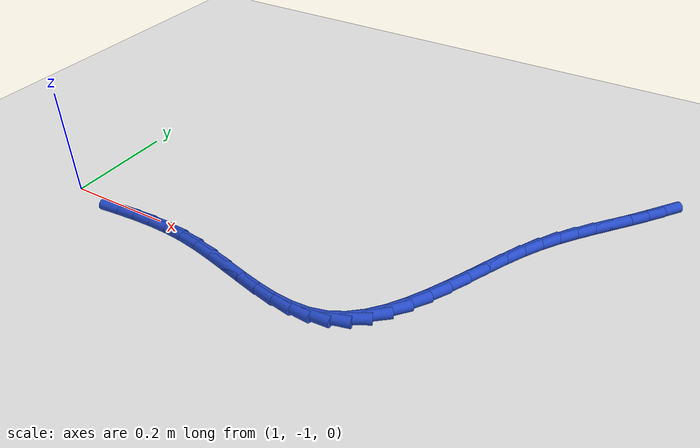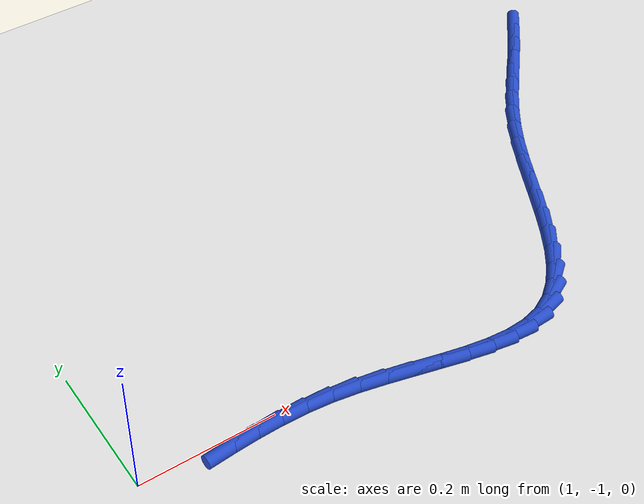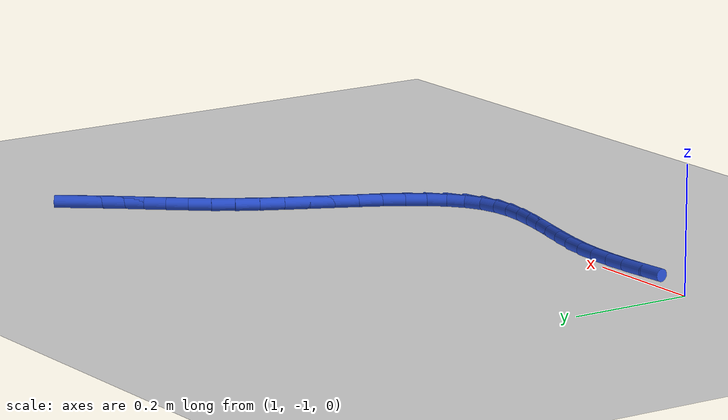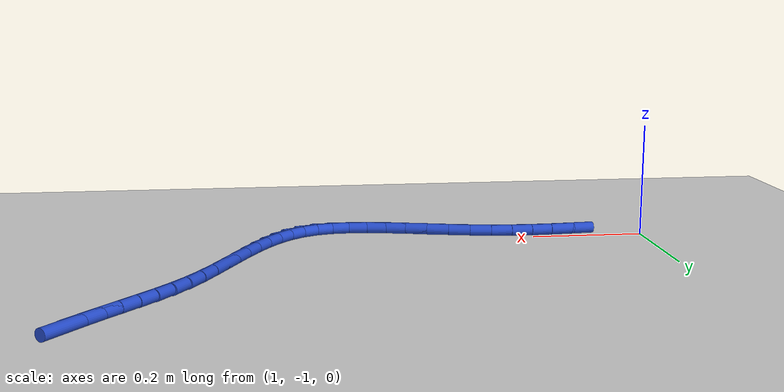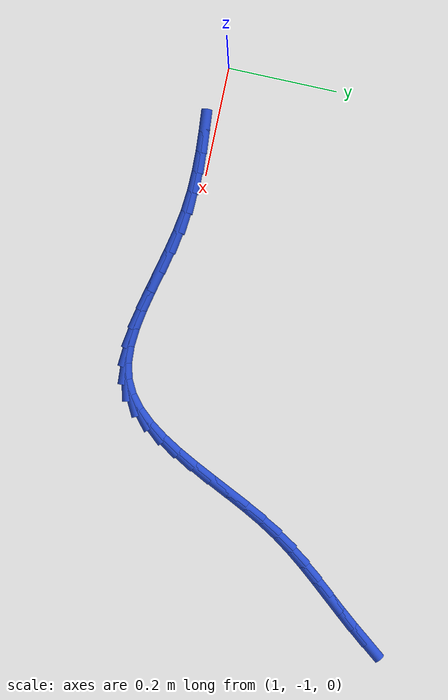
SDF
<sdf version="1.6">
 <world name="default">
  <model name="ground_plane">
   <static>1</static>
   <link name="link">
    <collision name="collision">
     <geometry><plane><normal>0 0 1</normal><size>100 100</size></plane></geometry>
     <surface><friction><ode><mu>100</mu><mu2>50</mu2></ode></friction></surface>
    </collision>
    <visual name="visual">
     <cast_shadows>0</cast_shadows>
     <geometry><plane><normal>0 0 1</normal><size>100 100</size></plane></geometry>
     <material>
      <script><uri>file://media/materials/scripts/gazebo.material</uri><name>Gazebo/WhiteGlow</name></script>
     </material>
    </visual>
   </link>
  </model>
  <model name="line">
   <link name="link_111">
    <pose>1.9607670285084227 -0.540435528030065 0.01 0 1.57 0.9120502153525494</pose>
    <collision name="collision">
     <geometry><cylinder><radius>0.01</radius><length>0.08</length></cylinder></geometry>
    </collision>
    <visual name="visual">
     <material>
      <script><name>Gazebo/Blue</name><uri>file://media/materials/scripts/gazebo.material</uri></script>
     </material>
     <geometry><cylinder><radius>0.01</radius><length>0.08</length></cylinder></geometry>
    </visual>
   </link>
   <link name="link_112">
    <pose>1.9383491775216093 -0.5693955038509502 0.01 0 1.57 0.8896670692883684</pose>
    <collision name="collision">
     <geometry><cylinder><radius>0.01</radius><length>0.08</length></cylinder></geometry>
    </collision>
    <visual name="visual">
     <material>
      <script><name>Gazebo/Blue</name><uri>file://media/materials/scripts/gazebo.material</uri></script>
     </material>
     <geometry><cylinder><radius>0.01</radius><length>0.08</length></cylinder></geometry>
    </visual>
   </link>
   <link name="link_113">
    <pose>1.9156261797985636 -0.5974302160851644 0.01 0 1.57 0.8731807234564977</pose>
    <collision name="collision">
     <geometry><cylinder><radius>0.01</radius><length>0.08</length></cylinder></geometry>
    </collision>
    <visual name="visual">
     <material>
      <script><name>Gazebo/Blue</name><uri>file://media/materials/scripts/gazebo.material</uri></script>
     </material>
     <geometry><cylinder><radius>0.01</radius><length>0.08</length></cylinder></geometry>
    </visual>
   </link>
   <link name="link_114">
    <pose>1.8928757404507273 -0.6245715689451823 0.01 0 1.57 0.8714012678509993</pose>
    <collision name="collision">
     <geometry><cylinder><radius>0.01</radius><length>0.08</length></cylinder></geometry>
    </collision>
    <visual name="visual">
     <material>
      <script><name>Gazebo/Blue</name><uri>file://media/materials/scripts/gazebo.material</uri></script>
     </material>
     <geometry><cylinder><radius>0.01</radius><length>0.08</length></cylinder></geometry>
    </visual>
   </link>
   <link name="link_115">
    <pose>1.8703503967237802 -0.6513474565558707 0.01 0 1.57 0.8871933040222618</pose>
    <collision name="collision">
     <geometry><cylinder><radius>0.01</radius><length>0.08</length></cylinder></geometry>
    </collision>
    <visual name="visual">
     <material>
      <script><name>Gazebo/Blue</name><uri>file://media/materials/scripts/gazebo.material</uri></script>
     </material>
     <geometry><cylinder><radius>0.01</radius><length>0.08</length></cylinder></geometry>
    </visual>
   </link>
   <link name="link_116">
    <pose>1.848295861542581 -0.6784202617713759 0.01 0 1.57 0.9201662751070315</pose>
    <collision name="collision">
     <geometry><cylinder><radius>0.01</radius><length>0.08</length></cylinder></geometry>
    </collision>
    <visual name="visual">
     <material>
      <script><name>Gazebo/Blue</name><uri>file://media/materials/scripts/gazebo.material</uri></script>
     </material>
     <geometry><cylinder><radius>0.01</radius><length>0.08</length></cylinder></geometry>
    </visual>
   </link>
   <link name="link_117">
    <pose>1.8269578477066868 -0.7064523699152458 0.01 0 1.57 0.9687656178644499</pose>
    <collision name="collision">
     <geometry><cylinder><radius>0.01</radius><length>0.08</length></cylinder></geometry>
    </collision>
    <visual name="visual">
     <material>
      <script><name>Gazebo/Blue</name><uri>file://media/materials/scripts/gazebo.material</uri></script>
     </material>
     <geometry><cylinder><radius>0.01</radius><length>0.08</length></cylinder></geometry>
    </visual>
   </link>
   <link name="link_118">
    <pose>1.8065820680156526 -0.7361061663110264 0.01 0 1.57 1.029518415259663</pose>
    <collision name="collision">
     <geometry><cylinder><radius>0.01</radius><length>0.08</length></cylinder></geometry>
    </collision>
    <visual name="visual">
     <material>
      <script><name>Gazebo/Blue</name><uri>file://media/materials/scripts/gazebo.material</uri></script>
     </material>
     <geometry><cylinder><radius>0.01</radius><length>0.08</length></cylinder></geometry>
    </visual>
   </link>
   <link name="link_119">
    <pose>1.7874010090792651 -0.768012484714139 0.01 0 1.57 1.083035337127444</pose>
    <collision name="collision">
     <geometry><cylinder><radius>0.01</radius><length>0.08</length></cylinder></geometry>
    </collision>
    <visual name="visual">
     <material>
      <script><name>Gazebo/Blue</name><uri>file://media/materials/scripts/gazebo.material</uri></script>
     </material>
     <geometry><cylinder><radius>0.01</radius><length>0.08</length></cylinder></geometry>
    </visual>
   </link>
   <link name="link_120">
    <pose>1.7693370309289662 -0.8020623403808689 0.01 0 1.57 1.114655221553153</pose>
    <collision name="collision">
     <geometry><cylinder><radius>0.01</radius><length>0.08</length></cylinder></geometry>
    </collision>
    <visual name="visual">
     <material>
      <script><name>Gazebo/Blue</name><uri>file://media/materials/scripts/gazebo.material</uri></script>
     </material>
     <geometry><cylinder><radius>0.01</radius><length>0.08</length></cylinder></geometry>
    </visual>
   </link>
   <link name="link_121">
    <pose>1.7519990396408656 -0.8373989924866725 0.01 0 1.57 1.1263541909779482</pose>
    <collision name="collision">
     <geometry><cylinder><radius>0.01</radius><length>0.08</length></cylinder></geometry>
    </collision>
    <visual name="visual">
     <material>
      <script><name>Gazebo/Blue</name><uri>file://media/materials/scripts/gazebo.material</uri></script>
     </material>
     <geometry><cylinder><radius>0.01</radius><length>0.08</length></cylinder></geometry>
    </visual>
   </link>
   <link name="link_122">
    <pose>1.734982049602143 -0.8731325610658566 0.01 0 1.57 1.1190073805929577</pose>
    <collision name="collision">
     <geometry><cylinder><radius>0.01</radius><length>0.08</length></cylinder></geometry>
    </collision>
    <visual name="visual">
     <material>
      <script><name>Gazebo/Blue</name><uri>file://media/materials/scripts/gazebo.material</uri></script>
     </material>
     <geometry><cylinder><radius>0.01</radius><length>0.08</length></cylinder></geometry>
    </visual>
   </link>
   <link name="link_123">
    <pose>1.717881075199978 -0.9083731661527286 0.01 0 1.57 1.091651220192081</pose>
    <collision name="collision">
     <geometry><cylinder><radius>0.01</radius><length>0.08</length></cylinder></geometry>
    </collision>
    <visual name="visual">
     <material>
      <script><name>Gazebo/Blue</name><uri>file://media/materials/scripts/gazebo.material</uri></script>
     </material>
     <geometry><cylinder><radius>0.01</radius><length>0.08</length></cylinder></geometry>
    </visual>
   </link>
   <link name="link_124">
    <pose>1.7002911308215507 -0.9422309277815961 0.01 0 1.57 1.0413223487629597</pose>
    <collision name="collision">
     <geometry><cylinder><radius>0.01</radius><length>0.08</length></cylinder></geometry>
    </collision>
    <visual name="visual">
     <material>
      <script><name>Gazebo/Blue</name><uri>file://media/materials/scripts/gazebo.material</uri></script>
     </material>
     <geometry><cylinder><radius>0.01</radius><length>0.08</length></cylinder></geometry>
    </visual>
   </link>
   <link name="link_125">
    <pose>1.6818072308540424 -0.9738159659867661 0.01 0 1.57 0.9627403837523052</pose>
    <collision name="collision">
     <geometry><cylinder><radius>0.01</radius><length>0.08</length></cylinder></geometry>
    </collision>
    <visual name="visual">
     <material>
      <script><name>Gazebo/Blue</name><uri>file://media/materials/scripts/gazebo.material</uri></script>
     </material>
     <geometry><cylinder><radius>0.01</radius><length>0.08</length></cylinder></geometry>
    </visual>
   </link>
   <link name="link_126">
    <pose>1.6620243896846314 -1.002238400802547 0.01 0 1.57 0.848189250927692</pose>
    <collision name="collision">
     <geometry><cylinder><radius>0.01</radius><length>0.08</length></cylinder></geometry>
    </collision>
    <visual name="visual">
     <material>
      <script><name>Gazebo/Blue</name><uri>file://media/materials/scripts/gazebo.material</uri></script>
     </material>
     <geometry><cylinder><radius>0.01</radius><length>0.08</length></cylinder></geometry>
    </visual>
   </link>
   <link name="link_127">
    <pose>1.6405376217004985 -1.026608352263246 0.01 0 1.57 0.6888196102573317</pose>
    <collision name="collision">
     <geometry><cylinder><radius>0.01</radius><length>0.08</length></cylinder></geometry>
    </collision>
    <visual name="visual">
     <material>
      <script><name>Gazebo/Blue</name><uri>file://media/materials/scripts/gazebo.material</uri></script>
     </material>
     <geometry><cylinder><radius>0.01</radius><length>0.08</length></cylinder></geometry>
    </visual>
   </link>
   <link name="link_128">
    <pose>1.616941941288824 -1.0460359404031705 0.01 0 1.57 0.48009297277920426</pose>
    <collision name="collision">
     <geometry><cylinder><radius>0.01</radius><length>0.08</length></cylinder></geometry>
    </collision>
    <visual name="visual">
     <material>
      <script><name>Gazebo/Blue</name><uri>file://media/materials/scripts/gazebo.material</uri></script>
     </material>
     <geometry><cylinder><radius>0.01</radius><length>0.08</length></cylinder></geometry>
    </visual>
   </link>
   <link name="link_129">
    <pose>1.5908325819185414 -1.0596318415634085 0.01 0 1.57 0.24882284500165242</pose>
    <collision name="collision">
     <geometry><cylinder><radius>0.01</radius><length>0.08</length></cylinder></geometry>
    </collision>
    <visual name="visual">
     <material>
      <script><name>Gazebo/Blue</name><uri>file://media/materials/scripts/gazebo.material</uri></script>
     </material>
     <geometry><cylinder><radius>0.01</radius><length>0.08</length></cylinder></geometry>
    </visual>
   </link>
   <link name="link_130">
    <pose>1.5619840374529022 -1.0669619218529978 0.01 0 1.57 0.06086158332855942</pose>
    <collision name="collision">
     <geometry><cylinder><radius>0.01</radius><length>0.08</length></cylinder></geometry>
    </collision>
    <visual name="visual">
     <material>
      <script><name>Gazebo/Blue</name><uri>file://media/materials/scripts/gazebo.material</uri></script>
     </material>
     <geometry><cylinder><radius>0.01</radius><length>0.08</length></cylinder></geometry>
    </visual>
   </link>
   <link name="link_131">
    <pose>1.5306740212365055 -1.0688698553419458 0.01 0 1.57 -0.07314880250136781</pose>
    <collision name="collision">
     <geometry><cylinder><radius>0.01</radius><length>0.08</length></cylinder></geometry>
    </collision>
    <visual name="visual">
     <material>
      <script><name>Gazebo/Blue</name><uri>file://media/materials/scripts/gazebo.material</uri></script>
     </material>
     <geometry><cylinder><radius>0.01</radius><length>0.08</length></cylinder></geometry>
    </visual>
   </link>
   <link name="link_132">
    <pose>1.4972678912811466 -1.0664218691961291 0.01 0 1.57 -0.1618663780616653</pose>
    <collision name="collision">
     <geometry><cylinder><radius>0.01</radius><length>0.08</length></cylinder></geometry>
    </collision>
    <visual name="visual">
     <material>
      <script><name>Gazebo/Blue</name><uri>file://media/materials/scripts/gazebo.material</uri></script>
     </material>
     <geometry><cylinder><radius>0.01</radius><length>0.08</length></cylinder></geometry>
    </visual>
   </link>
   <link name="link_133">
    <pose>1.4621310055986176 -1.0606841905814244 0.01 0 1.57 -0.2147371917281616</pose>
    <collision name="collision">
     <geometry><cylinder><radius>0.01</radius><length>0.08</length></cylinder></geometry>
    </collision>
    <visual name="visual">
     <material>
      <script><name>Gazebo/Blue</name><uri>file://media/materials/scripts/gazebo.material</uri></script>
     </material>
     <geometry><cylinder><radius>0.01</radius><length>0.08</length></cylinder></geometry>
    </visual>
   </link>
   <link name="link_134">
    <pose>1.4256287222007136 -1.0527230466637076 0.01 0 1.57 -0.23851353660681937</pose>
    <collision name="collision">
     <geometry><cylinder><radius>0.01</radius><length>0.08</length></cylinder></geometry>
    </collision>
    <visual name="visual">
     <material>
      <script><name>Gazebo/Blue</name><uri>file://media/materials/scripts/gazebo.material</uri></script>
     </material>
     <geometry><cylinder><radius>0.01</radius><length>0.08</length></cylinder></geometry>
    </visual>
   </link>
   <link name="link_135">
    <pose>1.388126399099227 -1.0436046646088555 0.01 0 1.57 -0.23694561709627124</pose>
    <collision name="collision">
     <geometry><cylinder><radius>0.01</radius><length>0.08</length></cylinder></geometry>
    </collision>
    <visual name="visual">
     <material>
      <script><name>Gazebo/Blue</name><uri>file://media/materials/scripts/gazebo.material</uri></script>
     </material>
     <geometry><cylinder><radius>0.01</radius><length>0.08</length></cylinder></geometry>
    </visual>
   </link>
   <link name="link_136">
    <pose>1.349989394305953 -1.0343952715827442 0.01 0 1.57 -0.21119911408914466</pose>
    <collision name="collision">
     <geometry><cylinder><radius>0.01</radius><length>0.08</length></cylinder></geometry>
    </collision>
    <visual name="visual">
     <material>
      <script><name>Gazebo/Blue</name><uri>file://media/materials/scripts/gazebo.material</uri></script>
     </material>
     <geometry><cylinder><radius>0.01</radius><length>0.08</length></cylinder></geometry>
    </visual>
   </link>
   <link name="link_137">
    <pose>1.3115830658326841 -1.0261610947512498 0.01 0 1.57 -0.1602625274841736</pose>
    <collision name="collision">
     <geometry><cylinder><radius>0.01</radius><length>0.08</length></cylinder></geometry>
    </collision>
    <visual name="visual">
     <material>
      <script><name>Gazebo/Blue</name><uri>file://media/materials/scripts/gazebo.material</uri></script>
     </material>
     <geometry><cylinder><radius>0.01</radius><length>0.08</length></cylinder></geometry>
    </visual>
   </link>
   <link name="link_138">
    <pose>1.2732727529878303 -1.0199682772451897 0.01 0 1.57 -0.08972515569165376</pose>
    <collision name="collision">
     <geometry><cylinder><radius>0.01</radius><length>0.08</length></cylinder></geometry>
    </collision>
    <visual name="visual">
     <material>
      <script><name>Gazebo/Blue</name><uri>file://media/materials/scripts/gazebo.material</uri></script>
     </material>
     <geometry><cylinder><radius>0.01</radius><length>0.08</length></cylinder></geometry>
    </visual>
   </link>
   <link name="link_139">
    <pose>1.2353511568810023 -1.0165565958481058 0.01 0 1.57 -0.025519167463038655</pose>
    <collision name="collision">
     <geometry><cylinder><radius>0.01</radius><length>0.08</length></cylinder></geometry>
    </collision>
    <visual name="visual">
     <material>
      <script><name>Gazebo/Blue</name><uri>file://media/materials/scripts/gazebo.material</uri></script>
     </material>
     <geometry><cylinder><radius>0.01</radius><length>0.08</length></cylinder></geometry>
    </visual>
   </link>
   <link name="link_140">
    <pose>1.1978737603755365 -1.015599996226798 0.01 0 1.57 0.02579245389645755</pose>
    <collision name="collision">
     <geometry><cylinder><radius>0.01</radius><length>0.08</length></cylinder></geometry>
    </collision>
    <visual name="visual">
     <material>
      <script><name>Gazebo/Blue</name><uri>file://media/materials/scripts/gazebo.material</uri></script>
     </material>
     <geometry><cylinder><radius>0.01</radius><length>0.08</length></cylinder></geometry>
    </visual>
   </link>
   <link name="link_141">
    <pose>1.1608476997755754 -1.0165552010140622 0.01 0 1.57 0.0634608857256426</pose>
    <collision name="collision">
     <geometry><cylinder><radius>0.01</radius><length>0.08</length></cylinder></geometry>
    </collision>
    <visual name="visual">
     <material>
      <script><name>Gazebo/Blue</name><uri>file://media/materials/scripts/gazebo.material</uri></script>
     </material>
     <geometry><cylinder><radius>0.01</radius><length>0.08</length></cylinder></geometry>
    </visual>
   </link>
   <link name="link_142">
    <pose>1.1242801113852616 -1.0188789328426935 0.01 0 1.57 0.08700441951679849</pose>
    <collision name="collision">
     <geometry><cylinder><radius>0.01</radius><length>0.08</length></cylinder></geometry>
    </collision>
    <visual name="visual">
     <material>
      <script><name>Gazebo/Blue</name><uri>file://media/materials/scripts/gazebo.material</uri></script>
     </material>
     <geometry><cylinder><radius>0.01</radius><length>0.08</length></cylinder></geometry>
    </visual>
   </link>
  </model>
 </world>
</sdf>
